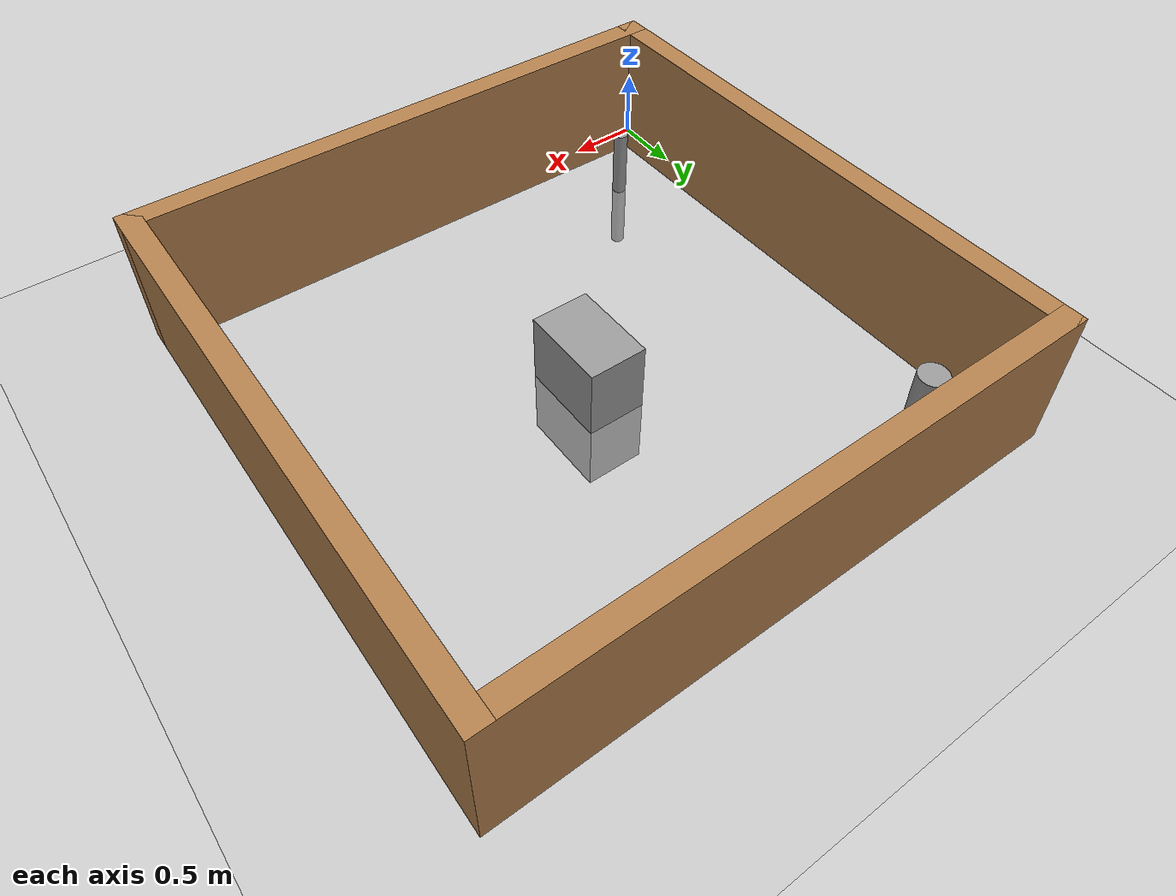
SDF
<sdf version="1.7">
 <world name="default">
  <light name="sun" type="directional">
   <pose>0 0 10 0 -0 0</pose>
   <diffuse>0.8 0.8 0.8 1</diffuse>
   <specular>0.2 0.2 0.2 1</specular>
   <attenuation>
    <range>1000</range>
    <constant>0.9</constant>
    <linear>0.01</linear>
    <quadratic>0.001</quadratic>
   </attenuation>
   <direction>-0.5 0.1 -0.9</direction>
   <spot><inner_angle>0</inner_angle><outer_angle>0</outer_angle><falloff>0</falloff></spot>
  </light>
  <model name="ground_plane">
   <static>1</static>
   <link name="link">
    <collision name="collision">
     <geometry><plane><normal>0 0 1</normal><size>100 100</size></plane></geometry>
     <surface>
      <contact><collide_bitmask>65535</collide_bitmask></contact>
      <friction><ode><mu>100</mu><mu2>50</mu2></ode></friction>
     </surface>
    </collision>
    <visual name="visual">
     <cast_shadows>0</cast_shadows>
     <geometry><plane><normal>0 0 1</normal><size>100 100</size></plane></geometry>
     <material>
      <script><uri>file://media/materials/scripts/gazebo.material</uri><name>Gazebo/Grey</name></script>
     </material>
    </visual>
   </link>
  </model>
  <gravity>0 0 -9.8</gravity>
  <magnetic_field>6e-06 2.3e-05 -4.2e-05</magnetic_field>
  <atmosphere type="adiabatic"/>
  <physics type="ode">
   <max_step_size>0.001</max_step_size>
   <real_time_factor>1</real_time_factor>
   <real_time_update_rate>1000</real_time_update_rate>
  </physics>
  <scene><ambient>0.4 0.4 0.4 1</ambient><background>0.7 0.7 0.7 1</background><shadows>1</shadows></scene>
  <spherical_coordinates>
   <surface_model>EARTH_WGS84</surface_model>
   <latitude_deg>0</latitude_deg>
   <longitude_deg>0</longitude_deg>
   <elevation>0</elevation>
   <heading_deg>0</heading_deg>
  </spherical_coordinates>
  <model name="my_world">
   <model name="my_block">
    <pose>-0.017828 0.918922 0 0 -0 0</pose>
    <link name="Wall_28">
     <collision name="Wall_28_Collision">
      <geometry><box><size>4 0.15 1</size></box></geometry>
      <pose>0 0 0.5 0 -0 0</pose>
     </collision>
     <visual name="Wall_28_Visual">
      <pose>0 0 0.5 0 -0 0</pose>
      <geometry><box><size>4 0.15 1</size></box></geometry>
      <material>
       <script><uri>file://media/materials/scripts/gazebo.material</uri><name>Gazebo/Wood</name></script>
       <ambient>1 1 1 1</ambient>
      </material>
      <meta><layer>0</layer></meta>
     </visual>
     <pose>-0 2.9215 0 0 -0 0</pose>
    </link>
    <link name="Wall_29">
     <collision name="Wall_29_Collision">
      <geometry><box><size>4 0.15 1</size></box></geometry>
      <pose>0 0 0.5 0 -0 0</pose>
     </collision>
     <visual name="Wall_29_Visual">
      <pose>0 0 0.5 0 -0 0</pose>
      <geometry><box><size>4 0.15 1</size></box></geometry>
      <material>
       <script><uri>file://media/materials/scripts/gazebo.material</uri><name>Gazebo/Wood</name></script>
       <ambient>1 1 1 1</ambient>
      </material>
      <meta><layer>0</layer></meta>
     </visual>
     <pose>1.925 0.9965 0 0 -0 -1.5708</pose>
    </link>
    <link name="Wall_30">
     <collision name="Wall_30_Collision">
      <geometry><box><size>4 0.15 1</size></box></geometry>
      <pose>0 0 0.5 0 -0 0</pose>
     </collision>
     <visual name="Wall_30_Visual">
      <pose>0 0 0.5 0 -0 0</pose>
      <geometry><box><size>4 0.15 1</size></box></geometry>
      <material>
       <script><uri>file://media/materials/scripts/gazebo.material</uri><name>Gazebo/Wood</name></script>
       <ambient>1 1 1 1</ambient>
      </material>
      <meta><layer>0</layer></meta>
     </visual>
     <pose>-0 -0.9285 0 0 -0 3.14159</pose>
    </link>
    <link name="Wall_31">
     <collision name="Wall_31_Collision">
      <geometry><box><size>4 0.15 1</size></box></geometry>
      <pose>0 0 0.5 0 -0 0</pose>
     </collision>
     <visual name="Wall_31_Visual">
      <pose>0 0 0.5 0 -0 0</pose>
      <geometry><box><size>4 0.15 1</size></box></geometry>
      <material>
       <script><uri>file://media/materials/scripts/gazebo.material</uri><name>Gazebo/Wood</name></script>
       <ambient>1 1 1 1</ambient>
      </material>
      <meta><layer>0</layer></meta>
     </visual>
     <pose>-1.925 0.9965 0 0 -0 1.5708</pose>
    </link>
    <static>1</static>
   </model>
   <model name="my_cylinder">
    <link name="link">
     <inertial>
      <mass>1</mass>
      <inertia><ixx>0.145833</ixx><ixy>0</ixy><ixz>0</ixz><iyy>0.145833</iyy><iyz>0</iyz><izz>0.125</izz></inertia>
     </inertial>
     <visual name="visual">
      <geometry><cylinder><radius>0.05</radius><length>1</length></cylinder></geometry>
      <material>
       <script><name>Gazebo/Grey</name><uri>file://media/materials/scripts/gazebo.material</uri></script>
       <shader type="pixel"><normal_map>__default__</normal_map></shader>
       <ambient>0.3 0.3 0.3 1</ambient>
       <diffuse>0.7 0.7 0.7 1</diffuse>
       <specular>0.01 0.01 0.01 1</specular>
       <emissive>0 0 0 1</emissive>
      </material>
     </visual>
     <collision name="collision">
      <geometry><cylinder><radius>0.05</radius><length>0.5</length></cylinder></geometry>
      <surface>
       <friction>
        <ode><mu>1</mu><mu2>1</mu2><fdir1>0 0 0</fdir1><slip1>0</slip1><slip2>0</slip2></ode>
        <torsional>
         <coefficient>1</coefficient>
         <patch_radius>0</patch_radius>
         <surface_radius>0</surface_radius>
         <use_patch_radius>1</use_patch_radius>
         <ode><slip>0</slip></ode>
        </torsional>
       </friction>
       <bounce><restitution_coefficient>0</restitution_coefficient><threshold>1e+06</threshold></bounce>
       <contact>
        <collide_without_contact>0</collide_without_contact>
        <collide_without_contact_bitmask>1</collide_without_contact_bitmask>
        <collide_bitmask>1</collide_bitmask>
        <ode>
         <soft_cfm>0</soft_cfm>
         <soft_erp>0.2</soft_erp>
         <kp>1e+13</kp>
         <kd>1</kd>
         <max_vel>0.01</max_vel>
         <min_depth>0</min_depth>
        </ode>
        <bullet>
         <split_impulse>1</split_impulse>
         <split_impulse_penetration_threshold>-0.01</split_impulse_penetration_threshold>
         <soft_cfm>0</soft_cfm>
         <soft_erp>0.2</soft_erp>
         <kp>1e+13</kp>
         <kd>1</kd>
        </bullet>
       </contact>
      </surface>
     </collision>
    </link>
    <static>0</static>
    <pose>-1.48306 0.471244 0 0 -0 0</pose>
   </model>
   <model name="my_cylinder10">
    <link name="link">
     <inertial>
      <mass>1</mass>
      <inertia><ixx>0.145833</ixx><ixy>0</ixy><ixz>0</ixz><iyy>0.145833</iyy><iyz>0</iyz><izz>0.125</izz></inertia>
     </inertial>
     <pose>-2.44142 0.433334 0 0 -0 0</pose>
     <visual name="visual">
      <geometry><cylinder><radius>0.1</radius><length>1</length></cylinder></geometry>
      <material>
       <script><name>Gazebo/Grey</name><uri>file://media/materials/scripts/gazebo.material</uri></script>
       <shader type="pixel"><normal_map>__default__</normal_map></shader>
       <ambient>0.3 0.3 0.3 1</ambient>
       <diffuse>0.7 0.7 0.7 1</diffuse>
       <specular>0.01 0.01 0.01 1</specular>
       <emissive>0 0 0 1</emissive>
      </material>
     </visual>
     <collision name="collision">
      <geometry><cylinder><radius>0.1</radius><length>1</length></cylinder></geometry>
      <surface>
       <friction>
        <ode><mu>1</mu><mu2>1</mu2><fdir1>0 0 0</fdir1><slip1>0</slip1><slip2>0</slip2></ode>
        <torsional>
         <coefficient>1</coefficient>
         <patch_radius>0</patch_radius>
         <surface_radius>0</surface_radius>
         <use_patch_radius>1</use_patch_radius>
         <ode><slip>0</slip></ode>
        </torsional>
       </friction>
       <bounce><restitution_coefficient>0</restitution_coefficient><threshold>1e+06</threshold></bounce>
       <contact>
        <collide_without_contact>0</collide_without_contact>
        <collide_without_contact_bitmask>1</collide_without_contact_bitmask>
        <collide_bitmask>1</collide_bitmask>
        <ode>
         <soft_cfm>0</soft_cfm>
         <soft_erp>0.2</soft_erp>
         <kp>1e+13</kp>
         <kd>1</kd>
         <max_vel>0.01</max_vel>
         <min_depth>0</min_depth>
        </ode>
        <bullet>
         <split_impulse>1</split_impulse>
         <split_impulse_penetration_threshold>-0.01</split_impulse_penetration_threshold>
         <soft_cfm>0</soft_cfm>
         <soft_erp>0.2</soft_erp>
         <kp>1e+13</kp>
         <kd>1</kd>
        </bullet>
       </contact>
      </surface>
     </collision>
    </link>
    <link name="link_1">
     <inertial>
      <mass>1</mass>
      <inertia>
       <ixx>0.166667</ixx>
       <ixy>0</ixy>
       <ixz>0</ixz>
       <iyy>0.166667</iyy>
       <iyz>0</iyz>
       <izz>0.166667</izz>
      </inertia>
     </inertial>
     <pose>-1.01458 -1.01749 9e-06 -0 -0 -2e-06</pose>
     <visual name="visual">
      <geometry><box><size>0.4 0.6 1</size></box></geometry>
      <material>
       <lighting>1</lighting>
       <script><uri>file://media/materials/scripts/gazebo.material</uri><name>Gazebo/Grey</name></script>
       <shader type="pixel"><normal_map>__default__</normal_map></shader>
       <ambient>0.3 0.3 0.3 1</ambient>
       <diffuse>0.7 0.7 0.7 1</diffuse>
       <specular>0.01 0.01 0.01 1</specular>
       <emissive>0 0 0 1</emissive>
      </material>
     </visual>
     <collision name="collision">
      <geometry><box><size>0.4 0.6 1</size></box></geometry>
      <surface>
       <friction>
        <ode><mu>1</mu><mu2>1</mu2><fdir1>0 0 0</fdir1><slip1>0</slip1><slip2>0</slip2></ode>
        <torsional>
         <coefficient>1</coefficient>
         <patch_radius>0</patch_radius>
         <surface_radius>0</surface_radius>
         <use_patch_radius>1</use_patch_radius>
         <ode><slip>0</slip></ode>
        </torsional>
       </friction>
       <bounce><restitution_coefficient>0</restitution_coefficient><threshold>1e+06</threshold></bounce>
       <contact>
        <collide_without_contact>0</collide_without_contact>
        <collide_without_contact_bitmask>1</collide_without_contact_bitmask>
        <collide_bitmask>1</collide_bitmask>
        <ode>
         <soft_cfm>0</soft_cfm>
         <soft_erp>0.2</soft_erp>
         <kp>1e+13</kp>
         <kd>1</kd>
         <max_vel>0.01</max_vel>
         <min_depth>0</min_depth>
        </ode>
        <bullet>
         <split_impulse>1</split_impulse>
         <split_impulse_penetration_threshold>-0.01</split_impulse_penetration_threshold>
         <soft_cfm>0</soft_cfm>
         <soft_erp>0.2</soft_erp>
         <kp>1e+13</kp>
         <kd>1</kd>
        </bullet>
       </contact>
      </surface>
     </collision>
    </link>
    <static>0</static>
    <pose>0.969312 3.02355 0 0 -0 0</pose>
   </model>
   <static>1</static>
   <pose>2.01471 0.096751 0 0 -0 0</pose>
  </model>
 </world>
</sdf>
